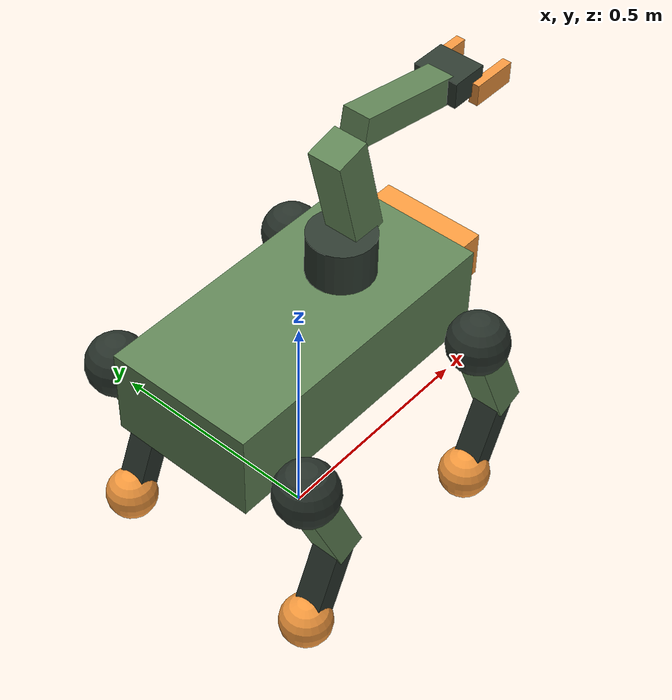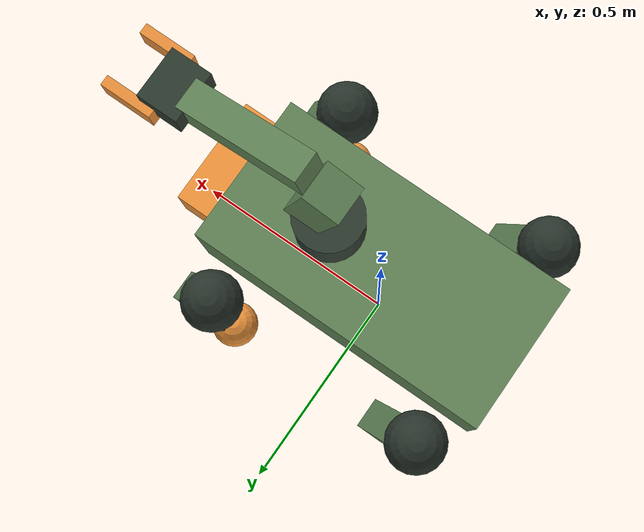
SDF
<?xml version='1.0' encoding='utf-8'?>
<sdf version="1.10">
  <model name="robot">
    <static>true</static>
    <link name="base_link">
      <visual name="body">
        <pose>0 0 0.48 0 0 0</pose>
        <geometry>
          <box>
            <size>0.65 0.32 0.19</size>
          </box>
        </geometry>
        <material>
          <diffuse>0.38 0.52 0.34 1</diffuse>
        </material>
      </visual>
      <visual name="face">
        <pose>0.36 0 0.49 0 0 0</pose>
        <geometry>
          <box>
            <size>0.09 0.23 0.1</size>
          </box>
        </geometry>
        <material>
          <diffuse>0.96 0.6 0.24 1</diffuse>
        </material>
      </visual>
      <visual name="hip_-0.25_-0.24">
        <pose>-0.25 -0.24 0.44 0 0 0</pose>
        <geometry>
          <sphere>
            <radius>0.065</radius>
          </sphere>
        </geometry>
        <material>
          <diffuse>0.16 0.2 0.17 1</diffuse>
        </material>
      </visual>
      <visual name="thigh_-0.25_-0.24">
        <pose>-0.20500000000000002 -0.24 0.32 0 -0.4 0</pose>
        <geometry>
          <box>
            <size>0.065 0.07 0.23</size>
          </box>
        </geometry>
        <material>
          <diffuse>0.38 0.52 0.34 1</diffuse>
        </material>
      </visual>
      <visual name="shin_-0.25_-0.24">
        <pose>-0.21 -0.24 0.125 0 0.4 0</pose>
        <geometry>
          <box>
            <size>0.05 0.06 0.23</size>
          </box>
        </geometry>
        <material>
          <diffuse>0.16 0.2 0.17 1</diffuse>
        </material>
      </visual>
      <visual name="foot_-0.25_-0.24">
        <pose>-0.25 -0.24 0.055 0 0 0</pose>
        <geometry>
          <sphere>
            <radius>0.055</radius>
          </sphere>
        </geometry>
        <material>
          <diffuse>0.96 0.6 0.24 1</diffuse>
        </material>
      </visual>
      <visual name="hip_-0.25_0.24">
        <pose>-0.25 0.24 0.44 0 0 0</pose>
        <geometry>
          <sphere>
            <radius>0.065</radius>
          </sphere>
        </geometry>
        <material>
          <diffuse>0.16 0.2 0.17 1</diffuse>
        </material>
      </visual>
      <visual name="thigh_-0.25_0.24">
        <pose>-0.20500000000000002 0.24 0.32 0 -0.4 0</pose>
        <geometry>
          <box>
            <size>0.065 0.07 0.23</size>
          </box>
        </geometry>
        <material>
          <diffuse>0.38 0.52 0.34 1</diffuse>
        </material>
      </visual>
      <visual name="shin_-0.25_0.24">
        <pose>-0.21 0.24 0.125 0 0.4 0</pose>
        <geometry>
          <box>
            <size>0.05 0.06 0.23</size>
          </box>
        </geometry>
        <material>
          <diffuse>0.16 0.2 0.17 1</diffuse>
        </material>
      </visual>
      <visual name="foot_-0.25_0.24">
        <pose>-0.25 0.24 0.055 0 0 0</pose>
        <geometry>
          <sphere>
            <radius>0.055</radius>
          </sphere>
        </geometry>
        <material>
          <diffuse>0.96 0.6 0.24 1</diffuse>
        </material>
      </visual>
      <visual name="hip_0.25_-0.24">
        <pose>0.25 -0.24 0.44 0 0 0</pose>
        <geometry>
          <sphere>
            <radius>0.065</radius>
          </sphere>
        </geometry>
        <material>
          <diffuse>0.16 0.2 0.17 1</diffuse>
        </material>
      </visual>
      <visual name="thigh_0.25_-0.24">
        <pose>0.295 -0.24 0.32 0 -0.4 0</pose>
        <geometry>
          <box>
            <size>0.065 0.07 0.23</size>
          </box>
        </geometry>
        <material>
          <diffuse>0.38 0.52 0.34 1</diffuse>
        </material>
      </visual>
      <visual name="shin_0.25_-0.24">
        <pose>0.29 -0.24 0.125 0 0.4 0</pose>
        <geometry>
          <box>
            <size>0.05 0.06 0.23</size>
          </box>
        </geometry>
        <material>
          <diffuse>0.16 0.2 0.17 1</diffuse>
        </material>
      </visual>
      <visual name="foot_0.25_-0.24">
        <pose>0.25 -0.24 0.055 0 0 0</pose>
        <geometry>
          <sphere>
            <radius>0.055</radius>
          </sphere>
        </geometry>
        <material>
          <diffuse>0.96 0.6 0.24 1</diffuse>
        </material>
      </visual>
      <visual name="hip_0.25_0.24">
        <pose>0.25 0.24 0.44 0 0 0</pose>
        <geometry>
          <sphere>
            <radius>0.065</radius>
          </sphere>
        </geometry>
        <material>
          <diffuse>0.16 0.2 0.17 1</diffuse>
        </material>
      </visual>
      <visual name="thigh_0.25_0.24">
        <pose>0.295 0.24 0.32 0 -0.4 0</pose>
        <geometry>
          <box>
            <size>0.065 0.07 0.23</size>
          </box>
        </geometry>
        <material>
          <diffuse>0.38 0.52 0.34 1</diffuse>
        </material>
      </visual>
      <visual name="shin_0.25_0.24">
        <pose>0.29 0.24 0.125 0 0.4 0</pose>
        <geometry>
          <box>
            <size>0.05 0.06 0.23</size>
          </box>
        </geometry>
        <material>
          <diffuse>0.16 0.2 0.17 1</diffuse>
        </material>
      </visual>
      <visual name="foot_0.25_0.24">
        <pose>0.25 0.24 0.055 0 0 0</pose>
        <geometry>
          <sphere>
            <radius>0.055</radius>
          </sphere>
        </geometry>
        <material>
          <diffuse>0.96 0.6 0.24 1</diffuse>
        </material>
      </visual>
      <visual name="arm_base_0">
        <pose>0.12 0 0.62 0 0 0</pose>
        <geometry>
          <cylinder>
            <radius>0.07</radius>
            <length>0.1</length>
          </cylinder>
        </geometry>
        <material>
          <diffuse>0.18 0.23 0.19 1</diffuse>
        </material>
      </visual>
      <visual name="upper_arm_0">
        <pose>0.13 0 0.77 0 -0.25 0</pose>
        <geometry>
          <box>
            <size>0.075 0.075 0.23</size>
          </box>
        </geometry>
        <material>
          <diffuse>0.38 0.52 0.34 1</diffuse>
        </material>
      </visual>
      <visual name="forearm_0">
        <pose>0.27 0 0.88 0 0.18 0</pose>
        <geometry>
          <box>
            <size>0.25 0.06 0.06</size>
          </box>
        </geometry>
        <material>
          <diffuse>0.38 0.52 0.34 1</diffuse>
        </material>
      </visual>
      <visual name="wrist_0">
        <pose>0.42 0 0.86 0 0 0</pose>
        <geometry>
          <box>
            <size>0.08 0.1 0.055</size>
          </box>
        </geometry>
        <material>
          <diffuse>0.18 0.23 0.19 1</diffuse>
        </material>
      </visual>
      <visual name="jaw_0_-0.055">
        <pose>0.48 -0.055 0.84 0 0 0</pose>
        <geometry>
          <box>
            <size>0.1 0.02 0.045</size>
          </box>
        </geometry>
        <material>
          <diffuse>0.94 0.58 0.24 1</diffuse>
        </material>
      </visual>
      <visual name="jaw_0_0.055">
        <pose>0.48 0.055 0.84 0 0 0</pose>
        <geometry>
          <box>
            <size>0.1 0.02 0.045</size>
          </box>
        </geometry>
        <material>
          <diffuse>0.94 0.58 0.24 1</diffuse>
        </material>
      </visual>
    </link>
  </model>
</sdf>
